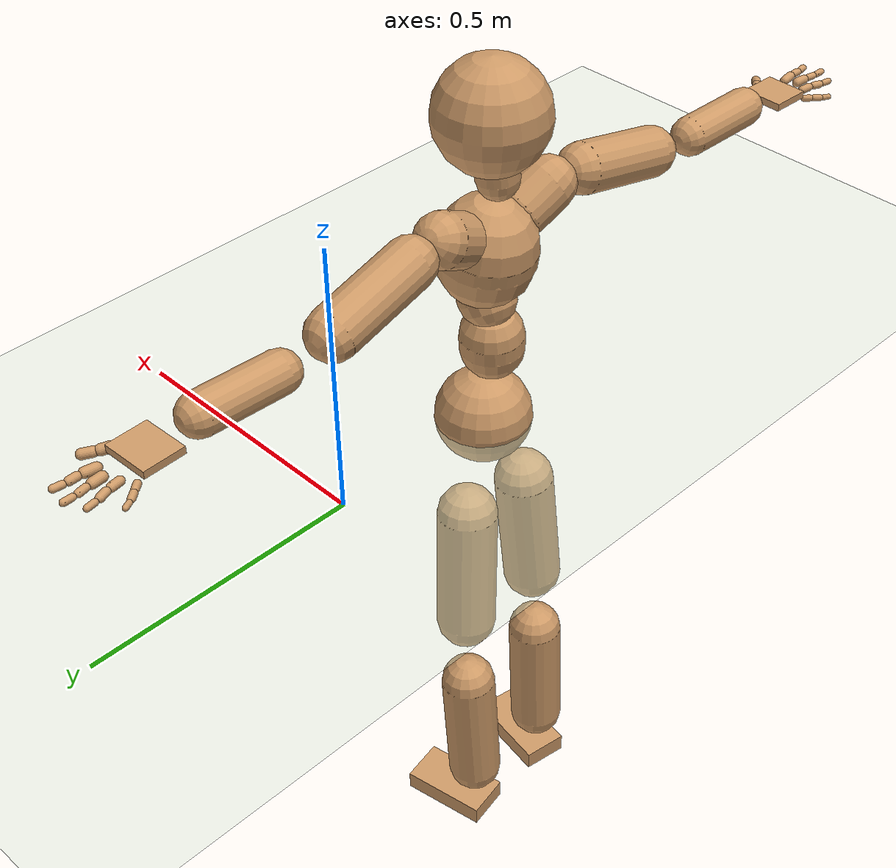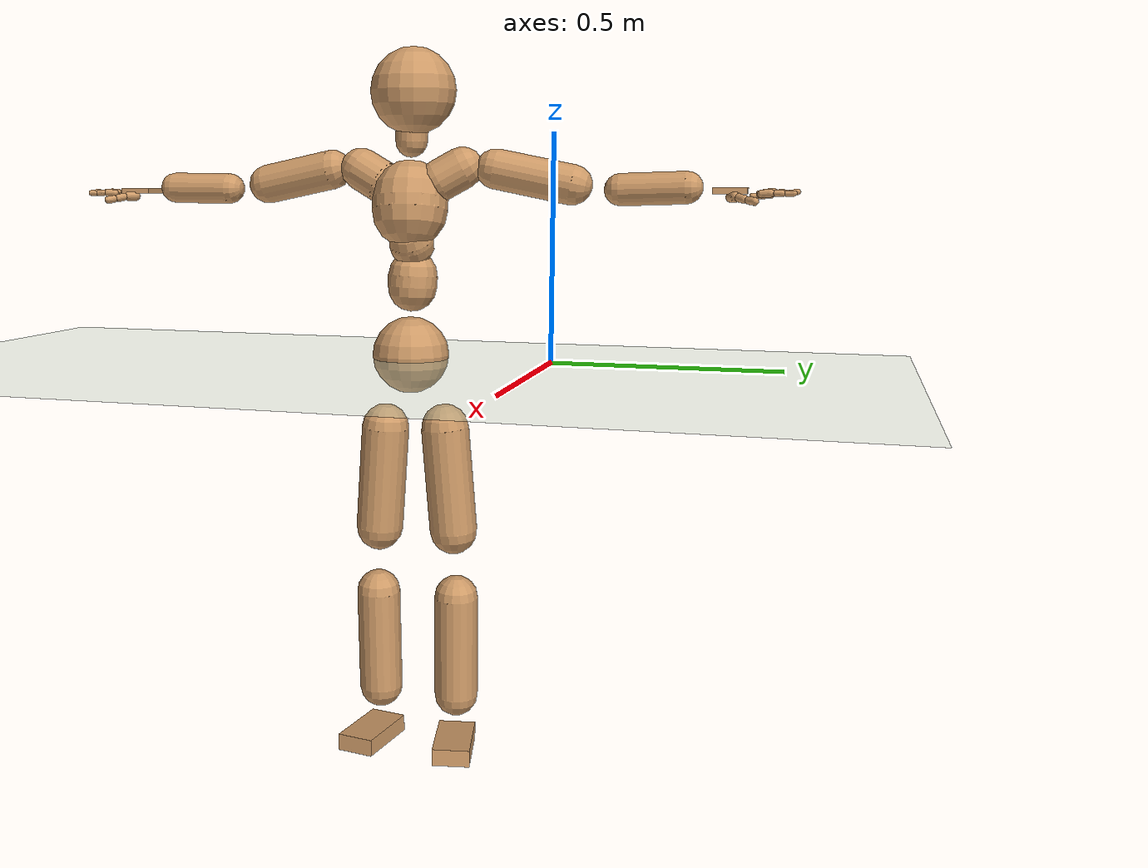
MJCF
<mujoco model="humanoid">
  <compiler coordinate="local" angle="radian"/>
  <default>
    <joint damping="0.0" armature="0.01" stiffness="0.0" limited="true"/>
    <geom conaffinity="1" condim="3" contype="7" margin="0.001" rgba="0.8 0.6 .4 1"/>
  </default>
  <asset>
    <texture type="skybox" builtin="gradient" rgb1=".4 .5 .6" rgb2="0 0 0" width="100" height="100"/>
    <texture builtin="flat" height="1278" mark="cross" markrgb="1 1 1" name="texgeom" random="0.01" rgb1="0.8 0.6 0.4" rgb2="0.8 0.6 0.4" type="cube" width="127"/>
    <texture builtin="checker" height="100" name="texplane" rgb1="0 0 0" rgb2="0.8 0.8 0.8" type="2d" width="100"/>
    <material name="MatPlane" reflectance="0.5" shininess="1" specular="1" texrepeat="60 60" texture="texplane"/>
    <material name="geom" texture="texgeom" texuniform="true"/>
  </asset>
  <worldbody>
    <light cutoff="100" diffuse="1 1 1" dir="-0 0 -1.3" directional="true" exponent="1" pos="0 0 1.3" specular=".1 .1 .1"/>
    <geom conaffinity="1" condim="3" name="floor" pos="0 0 0" rgba="0.8 0.9 0.8 1" size="100 100 .2" type="plane" material="MatPlane"/>
    <body name="Pelvis" pos="0.0006 -0.3272 0.0056">
      <freejoint name="Pelvis"/>
      <geom type="sphere" contype="1" conaffinity="1" density="500" size="0.0874" pos="0.0000 0.0000 0.0000" name="Pelvis"/>
      <body name="L_Hip" pos="-0.0272 0.0668 -0.0889">
        <joint name="L_Hip_x" type="hinge" pos="0 0 0" axis="1 0 0" stiffness="800" damping="80" armature="0.02" range="-180.0000 180.0000"/>
        <joint name="L_Hip_y" type="hinge" pos="0 0 0" axis="0 1 0" stiffness="800" damping="80" armature="0.02" range="-180.0000 180.0000"/>
        <joint name="L_Hip_z" type="hinge" pos="0 0 0" axis="0 0 1" stiffness="800" damping="80" armature="0.02" range="-180.0000 180.0000"/>
        <geom type="capsule" contype="1" conaffinity="1" density="500" fromto="-0.0043 0.0058 -0.0827 -0.0171 0.0234 -0.3307" size="0.0554" name="L_Hip"/>
        <body name="L_Knee" pos="-0.0214 0.0292 -0.4133">
          <joint name="L_Knee_x" type="hinge" pos="0 0 0" axis="1 0 0" stiffness="800" damping="80" armature="0.02" range="-180.0000 180.0000"/>
          <joint name="L_Knee_y" type="hinge" pos="0 0 0" axis="0 1 0" stiffness="800" damping="80" armature="0.02" range="-180.0000 180.0000"/>
          <joint name="L_Knee_z" type="hinge" pos="0 0 0" axis="0 0 1" stiffness="800" damping="80" armature="0.02" range="-180.0000 180.0000"/>
          <geom type="capsule" contype="1" conaffinity="1" density="500" fromto="-0.0046 -0.0011 -0.0830 -0.0182 -0.0045 -0.3319" size="0.0519" name="L_Knee"/>
          <body name="L_Ankle" pos="-0.0228 -0.0056 -0.4148">
            <joint name="L_Ankle_x" type="hinge" pos="0 0 0" axis="1 0 0" stiffness="800" damping="80" armature="0.02" range="-180.0000 180.0000"/>
            <joint name="L_Ankle_y" type="hinge" pos="0 0 0" axis="0 1 0" stiffness="800" damping="80" armature="0.02" range="-180.0000 180.0000"/>
            <joint name="L_Ankle_z" type="hinge" pos="0 0 0" axis="0 0 1" stiffness="800" damping="80" armature="0.02" range="-180.0000 180.0000"/>
            <geom type="box" contype="1" conaffinity="1" density="500" pos="0.0544 0.0103 -0.0233" size="0.0848 0.044 0.0199" quat="0.9956 0.0000 0.0000 0.0932" name="L_Ankle"/>
            <body name="L_Toe" pos="0.1089 0.0206 -0.0466">
              <joint name="L_Toe_x" type="hinge" pos="0 0 0" axis="1 0 0" stiffness="500" damping="50" armature="0.02" range="-180.0000 180.0000"/>
              <joint name="L_Toe_y" type="hinge" pos="0 0 0" axis="0 1 0" stiffness="500" damping="50" armature="0.02" range="-180.0000 180.0000"/>
              <joint name="L_Toe_z" type="hinge" pos="0 0 0" axis="0 0 1" stiffness="500" damping="50" armature="0.02" range="-180.0000 180.0000"/>
              <geom type="box" contype="1" conaffinity="1" density="500" pos="0.0000 0.0000 0.0235" size="0.0009 0.0022 0.001" quat="0.9950 0.0000 0.0000 0.1002" name="L_Toe"/>
            </body>
          </body>
        </body>
      </body>
      <body name="R_Hip" pos="-0.0286 -0.0668 -0.0959">
        <joint name="R_Hip_x" type="hinge" pos="0 0 0" axis="1 0 0" stiffness="800" damping="80" armature="0.02" range="-180.0000 180.0000"/>
        <joint name="R_Hip_y" type="hinge" pos="0 0 0" axis="0 1 0" stiffness="800" damping="80" armature="0.02" range="-180.0000 180.0000"/>
        <joint name="R_Hip_z" type="hinge" pos="0 0 0" axis="0 0 1" stiffness="800" damping="80" armature="0.02" range="-180.0000 180.0000"/>
        <geom type="capsule" contype="1" conaffinity="1" density="500" fromto="-0.0031 -0.0065 -0.0817 -0.0125 -0.0258 -0.3269" size="0.0552" name="R_Hip"/>
        <body name="R_Knee" pos="-0.0156 -0.0323 -0.4086">
          <joint name="R_Knee_x" type="hinge" pos="0 0 0" axis="1 0 0" stiffness="800" damping="80" armature="0.02" range="-180.0000 180.0000"/>
          <joint name="R_Knee_y" type="hinge" pos="0 0 0" axis="0 1 0" stiffness="800" damping="80" armature="0.02" range="-180.0000 180.0000"/>
          <joint name="R_Knee_z" type="hinge" pos="0 0 0" axis="0 0 1" stiffness="800" damping="80" armature="0.02" range="-180.0000 180.0000"/>
          <geom type="capsule" contype="1" conaffinity="1" density="500" fromto="-0.0037 0.0003 -0.0813 -0.0149 0.0011 -0.3251" size="0.0519" name="R_Knee"/>
          <body name="R_Ankle" pos="-0.0187 0.0014 -0.4064">
            <joint name="R_Ankle_x" type="hinge" pos="0 0 0" axis="1 0 0" stiffness="800" damping="80" armature="0.02" range="-180.0000 180.0000"/>
            <joint name="R_Ankle_y" type="hinge" pos="0 0 0" axis="0 1 0" stiffness="800" damping="80" armature="0.02" range="-180.0000 180.0000"/>
            <joint name="R_Ankle_z" type="hinge" pos="0 0 0" axis="0 0 1" stiffness="800" damping="80" armature="0.02" range="-180.0000 180.0000"/>
            <geom type="box" contype="1" conaffinity="1" density="500" pos="0.0512 -0.0084 -0.0252" size="0.0848 0.044 0.0199" quat="0.9967 0.0000 0.0000 -0.0808" name="R_Ankle"/>
            <body name="R_Toe" pos="0.1024 -0.0167 -0.0503">
              <joint name="R_Toe_x" type="hinge" pos="0 0 0" axis="1 0 0" stiffness="500" damping="50" armature="0.02" range="-180.0000 180.0000"/>
              <joint name="R_Toe_y" type="hinge" pos="0 0 0" axis="0 1 0" stiffness="500" damping="50" armature="0.02" range="-180.0000 180.0000"/>
              <joint name="R_Toe_z" type="hinge" pos="0 0 0" axis="0 0 1" stiffness="500" damping="50" armature="0.02" range="-180.0000 180.0000"/>
              <geom type="box" contype="1" conaffinity="1" density="500" pos="0.0000 0.0000 0.0254" size="0.0009 0.0022 0.001" quat="0.9976 0.0000 0.0000 -0.0699" name="R_Toe"/>
            </body>
          </body>
        </body>
      </body>
      <body name="Torso" pos="-0.0175 -0.0048 0.1027">
        <joint name="Torso_x" type="hinge" pos="0 0 0" axis="1 0 0" stiffness="1000" damping="100" armature="0.02" range="-180.0000 180.0000"/>
        <joint name="Torso_y" type="hinge" pos="0 0 0" axis="0 1 0" stiffness="1000" damping="100" armature="0.02" range="-180.0000 180.0000"/>
        <joint name="Torso_z" type="hinge" pos="0 0 0" axis="0 0 1" stiffness="1000" damping="100" armature="0.02" range="-180.0000 180.0000"/>
        <geom type="capsule" contype="1" conaffinity="1" density="500" fromto="-0.0013 0.0042 0.0775 -0.0009 0.0028 0.0516" size="0.0564" name="Torso"/>
        <body name="Spine" pos="-0.0022 0.0069 0.1291">
          <joint name="Spine_x" type="hinge" pos="0 0 0" axis="1 0 0" stiffness="1000" damping="100" armature="0.02" range="-180.0000 180.0000"/>
          <joint name="Spine_y" type="hinge" pos="0 0 0" axis="0 1 0" stiffness="1000" damping="100" armature="0.02" range="-180.0000 180.0000"/>
          <joint name="Spine_z" type="hinge" pos="0 0 0" axis="0 0 1" stiffness="1000" damping="100" armature="0.02" range="-180.0000 180.0000"/>
          <geom type="capsule" contype="1" conaffinity="1" density="500" fromto="0.0154 -0.0020 0.0266 0.0103 -0.0013 0.0178" size="0.0509" name="Spine"/>
          <body name="Chest" pos="0.0257 -0.0033 0.0444">
            <joint name="Chest_x" type="hinge" pos="0 0 0" axis="1 0 0" stiffness="1000" damping="100" armature="0.02" range="-180.0000 180.0000"/>
            <joint name="Chest_y" type="hinge" pos="0 0 0" axis="0 1 0" stiffness="1000" damping="100" armature="0.02" range="-180.0000 180.0000"/>
            <joint name="Chest_z" type="hinge" pos="0 0 0" axis="0 0 1" stiffness="1000" damping="100" armature="0.02" range="-180.0000 180.0000"/>
            <geom type="capsule" contype="1" conaffinity="1" density="500" fromto="-0.0126 -0.0015 0.0772 -0.0084 -0.0010 0.0514" size="0.0859" name="Chest"/>
            <body name="Neck" pos="-0.0332 -0.0054 0.1772">
              <joint name="Neck_x" type="hinge" pos="0 0 0" axis="1 0 0" stiffness="500" damping="50" armature="0.02" range="-180.0000 180.0000"/>
              <joint name="Neck_y" type="hinge" pos="0 0 0" axis="0 1 0" stiffness="500" damping="50" armature="0.02" range="-180.0000 180.0000"/>
              <joint name="Neck_z" type="hinge" pos="0 0 0" axis="0 0 1" stiffness="500" damping="50" armature="0.02" range="-180.0000 180.0000"/>
              <geom type="capsule" contype="1" conaffinity="1" density="500" fromto="0.0017 0.0017 0.0273 0.0068 0.0068 0.1090" size="0.0365" name="Neck"/>
              <body name="Head" pos="0.0085 0.0085 0.1363">
                <joint name="Head_x" type="hinge" pos="0 0 0" axis="1 0 0" stiffness="500" damping="50" armature="0.02" range="-180.0000 180.0000"/>
                <joint name="Head_y" type="hinge" pos="0 0 0" axis="0 1 0" stiffness="500" damping="50" armature="0.02" range="-180.0000 180.0000"/>
                <joint name="Head_z" type="hinge" pos="0 0 0" axis="0 0 1" stiffness="500" damping="50" armature="0.02" range="-180.0000 180.0000"/>
                <geom type="sphere" contype="1" conaffinity="1" density="500" size="0.0963" pos="0.0000 0.0000 0.0000" name="Head"/>
              </body>
            </body>
            <body name="L_Thorax" pos="-0.0126 0.0483 0.1061">
              <joint name="L_Thorax_x" type="hinge" pos="0 0 0" axis="1 0 0" stiffness="500" damping="50" armature="0.02" range="-180.0000 180.0000"/>
              <joint name="L_Thorax_y" type="hinge" pos="0 0 0" axis="0 1 0" stiffness="500" damping="50" armature="0.02" range="-180.0000 180.0000"/>
              <joint name="L_Thorax_z" type="hinge" pos="0 0 0" axis="0 0 1" stiffness="500" damping="50" armature="0.02" range="-180.0000 180.0000"/>
              <geom type="capsule" contype="1" conaffinity="1" density="500" fromto="-0.0040 0.0170 0.0096 -0.0159 0.0678 0.0383" size="0.0467" name="L_Thorax"/>
              <body name="L_Shoulder" pos="-0.0199 0.0848 0.0478">
                <joint name="L_Shoulder_x" type="hinge" pos="0 0 0" axis="1 0 0" stiffness="500" damping="50" armature="0.02" range="-180.0000 180.0000"/>
                <joint name="L_Shoulder_y" type="hinge" pos="0 0 0" axis="0 1 0" stiffness="500" damping="50" armature="0.02" range="-180.0000 180.0000"/>
                <joint name="L_Shoulder_z" type="hinge" pos="0 0 0" axis="0 0 1" stiffness="500" damping="50" armature="0.02" range="-180.0000 180.0000"/>
                <geom type="capsule" contype="1" conaffinity="1" density="500" fromto="-0.0046 0.0569 -0.0118 -0.0183 0.2277 -0.0471" size="0.0443" name="L_Shoulder"/>
                <body name="L_Elbow" pos="-0.0229 0.2846 -0.0589">
                  <joint name="L_Elbow_x" type="hinge" pos="0 0 0" axis="1 0 0" stiffness="500" damping="50" armature="0.02" range="-720.0000 720.0000"/>
                  <joint name="L_Elbow_y" type="hinge" pos="0 0 0" axis="0 1 0" stiffness="500" damping="50" armature="0.02" range="-720.0000 720.0000"/>
                  <joint name="L_Elbow_z" type="hinge" pos="0 0 0" axis="0 0 1" stiffness="500" damping="50" armature="0.02" range="-720.0000 720.0000"/>
                  <geom type="capsule" contype="1" conaffinity="1" density="500" fromto="0.0005 0.0477 0.0015 0.0019 0.1906 0.0058" size="0.0351" name="L_Elbow"/>
                  <body name="L_Wrist" pos="0.0024 0.2383 0.0073">
                    <joint name="L_Wrist_x" type="hinge" pos="0 0 0" axis="1 0 0" stiffness="300" damping="30" armature="0.02" range="-180.0000 180.0000"/>
                    <joint name="L_Wrist_y" type="hinge" pos="0 0 0" axis="0 1 0" stiffness="300" damping="30" armature="0.02" range="-180.0000 180.0000"/>
                    <joint name="L_Wrist_z" type="hinge" pos="0 0 0" axis="0 0 1" stiffness="300" damping="30" armature="0.02" range="-180.0000 180.0000"/>
                    <geom type="box" contype="1" conaffinity="1" density="500" pos="-0.0017 0.0438 -0.0083" size="0.036 0.0415 0.0065" quat="0.7203 0.0000 0.0000 -0.6936" name="L_Wrist"/>
                    <body name="L_Index1" pos="0.0199 0.1027 -0.0151">
                      <joint name="L_Index1_x" type="hinge" pos="0 0 0" axis="1 0 0" stiffness="100" damping="10" armature="0.02" range="-180.0000 180.0000"/>
                      <joint name="L_Index1_y" type="hinge" pos="0 0 0" axis="0 1 0" stiffness="100" damping="10" armature="0.02" range="-180.0000 180.0000"/>
                      <joint name="L_Index1_z" type="hinge" pos="0 0 0" axis="0 0 1" stiffness="100" damping="10" armature="0.02" range="-180.0000 180.0000"/>
                      <geom type="capsule" contype="1" conaffinity="1" density="500" fromto="0.0005 0.0062 0.0005 0.0021 0.0248 0.0020" size="0.0084" name="L_Index1"/>
                      <body name="L_Index2" pos="0.0027 0.0311 0.0024">
                        <joint name="L_Index2_x" type="hinge" pos="0 0 0" axis="1 0 0" stiffness="100" damping="10" armature="0.02" range="-180.0000 180.0000"/>
                        <joint name="L_Index2_y" type="hinge" pos="0 0 0" axis="0 1 0" stiffness="100" damping="10" armature="0.02" range="-180.0000 180.0000"/>
                        <joint name="L_Index2_z" type="hinge" pos="0 0 0" axis="0 0 1" stiffness="100" damping="10" armature="0.02" range="-180.0000 180.0000"/>
                        <geom type="capsule" contype="1" conaffinity="1" density="500" fromto="0.0001 0.0044 -0.0003 0.0004 0.0177 -0.0011" size="0.007" name="L_Index2"/>
                        <body name="L_Index3" pos="0.0005 0.0221 -0.0014">
                          <joint name="L_Index3_x" type="hinge" pos="0 0 0" axis="1 0 0" stiffness="100" damping="10" armature="0.02" range="-180.0000 180.0000"/>
                          <joint name="L_Index3_y" type="hinge" pos="0 0 0" axis="0 1 0" stiffness="100" damping="10" armature="0.02" range="-180.0000 180.0000"/>
                          <joint name="L_Index3_z" type="hinge" pos="0 0 0" axis="0 0 1" stiffness="100" damping="10" armature="0.02" range="-180.0000 180.0000"/>
                          <geom type="capsule" contype="1" conaffinity="1" density="500" fromto="0.0005 0.0048 0.0001 0.0020 0.0193 0.0005" size="0.006" name="L_Index3"/>
                        </body>
                      </body>
                    </body>
                    <body name="L_Middle1" pos="-0.0014 0.1094 -0.0128">
                      <joint name="L_Middle1_x" type="hinge" pos="0 0 0" axis="1 0 0" stiffness="100" damping="10" armature="0.02" range="-180.0000 180.0000"/>
                      <joint name="L_Middle1_y" type="hinge" pos="0 0 0" axis="0 1 0" stiffness="100" damping="10" armature="0.02" range="-180.0000 180.0000"/>
                      <joint name="L_Middle1_z" type="hinge" pos="0 0 0" axis="0 0 1" stiffness="100" damping="10" armature="0.02" range="-180.0000 180.0000"/>
                      <geom type="capsule" contype="1" conaffinity="1" density="500" fromto="-0.0008 0.0059 0.0002 -0.0031 0.0236 0.0010" size="0.0084" name="L_Middle1"/>
                      <body name="L_Middle2" pos="-0.0038 0.0295 0.0012">
                        <joint name="L_Middle2_x" type="hinge" pos="0 0 0" axis="1 0 0" stiffness="100" damping="10" armature="0.02" range="-180.0000 180.0000"/>
                        <joint name="L_Middle2_y" type="hinge" pos="0 0 0" axis="0 1 0" stiffness="100" damping="10" armature="0.02" range="-180.0000 180.0000"/>
                        <joint name="L_Middle2_z" type="hinge" pos="0 0 0" axis="0 0 1" stiffness="100" damping="10" armature="0.02" range="-180.0000 180.0000"/>
                        <geom type="capsule" contype="1" conaffinity="1" density="500" fromto="-0.0007 0.0046 -0.0001 -0.0029 0.0184 -0.0004" size="0.0063" name="L_Middle2"/>
                        <body name="L_Middle3" pos="-0.0037 0.023 -0.0005">
                          <joint name="L_Middle3_x" type="hinge" pos="0 0 0" axis="1 0 0" stiffness="100" damping="10" armature="0.02" range="-180.0000 180.0000"/>
                          <joint name="L_Middle3_y" type="hinge" pos="0 0 0" axis="0 1 0" stiffness="100" damping="10" armature="0.02" range="-180.0000 180.0000"/>
                          <joint name="L_Middle3_z" type="hinge" pos="0 0 0" axis="0 0 1" stiffness="100" damping="10" armature="0.02" range="-180.0000 180.0000"/>
                          <geom type="capsule" contype="1" conaffinity="1" density="500" fromto="-0.0003 0.0050 0.0003 -0.0013 0.0200 0.0012" size="0.0057" name="L_Middle3"/>
                        </body>
                      </body>
                    </body>
                    <body name="L_Pinky1" pos="-0.0376 0.0845 -0.0194">
                      <joint name="L_Pinky1_x" type="hinge" pos="0 0 0" axis="1 0 0" stiffness="100" damping="10" armature="0.02" range="-180.0000 180.0000"/>
                      <joint name="L_Pinky1_y" type="hinge" pos="0 0 0" axis="0 1 0" stiffness="100" damping="10" armature="0.02" range="-180.0000 180.0000"/>
                      <joint name="L_Pinky1_z" type="hinge" pos="0 0 0" axis="0 0 1" stiffness="100" damping="10" armature="0.02" range="-180.0000 180.0000"/>
                      <geom type="capsule" contype="1" conaffinity="1" density="500" fromto="-0.0023 0.0028 -0.0000 -0.0093 0.0113 -0.0002" size="0.0061" name="L_Pinky1"/>
                      <body name="L_Pinky2" pos="-0.0117 0.0141 -0.0002">
                        <joint name="L_Pinky2_x" type="hinge" pos="0 0 0" axis="1 0 0" stiffness="100" damping="10" armature="0.02" range="-180.0000 180.0000"/>
                        <joint name="L_Pinky2_y" type="hinge" pos="0 0 0" axis="0 1 0" stiffness="100" damping="10" armature="0.02" range="-180.0000 180.0000"/>
                        <joint name="L_Pinky2_z" type="hinge" pos="0 0 0" axis="0 0 1" stiffness="100" damping="10" armature="0.02" range="-180.0000 180.0000"/>
                        <geom type="capsule" contype="1" conaffinity="1" density="500" fromto="-0.0023 0.0029 -0.0001 -0.0091 0.0116 -0.0005" size="0.006" name="L_Pinky2"/>
                        <body name="L_Pinky3" pos="-0.0114 0.0145 -0.0007">
                          <joint name="L_Pinky3_x" type="hinge" pos="0 0 0" axis="1 0 0" stiffness="100" damping="10" armature="0.02" range="-180.0000 180.0000"/>
                          <joint name="L_Pinky3_y" type="hinge" pos="0 0 0" axis="0 1 0" stiffness="100" damping="10" armature="0.02" range="-180.0000 180.0000"/>
                          <joint name="L_Pinky3_z" type="hinge" pos="0 0 0" axis="0 0 1" stiffness="100" damping="10" armature="0.02" range="-180.0000 180.0000"/>
                          <geom type="capsule" contype="1" conaffinity="1" density="500" fromto="-0.0019 0.0033 0.0003 -0.0075 0.0132 0.0011" size="0.0047" name="L_Pinky3"/>
                        </body>
                      </body>
                    </body>
                    <body name="L_Ring1" pos="-0.0227 0.0974 -0.0149">
                      <joint name="L_Ring1_x" type="hinge" pos="0 0 0" axis="1 0 0" stiffness="100" damping="10" armature="0.02" range="-180.0000 180.0000"/>
                      <joint name="L_Ring1_y" type="hinge" pos="0 0 0" axis="0 1 0" stiffness="100" damping="10" armature="0.02" range="-180.0000 180.0000"/>
                      <joint name="L_Ring1_z" type="hinge" pos="0 0 0" axis="0 0 1" stiffness="100" damping="10" armature="0.02" range="-180.0000 180.0000"/>
                      <geom type="capsule" contype="1" conaffinity="1" density="500" fromto="-0.0011 0.0053 0.0003 -0.0043 0.0213 0.0012" size="0.0073" name="L_Ring1"/>
                      <body name="L_Ring2" pos="-0.0053 0.0266 0.0015">
                        <joint name="L_Ring2_x" type="hinge" pos="0 0 0" axis="1 0 0" stiffness="100" damping="10" armature="0.02" range="-180.0000 180.0000"/>
                        <joint name="L_Ring2_y" type="hinge" pos="0 0 0" axis="0 1 0" stiffness="100" damping="10" armature="0.02" range="-180.0000 180.0000"/>
                        <joint name="L_Ring2_z" type="hinge" pos="0 0 0" axis="0 0 1" stiffness="100" damping="10" armature="0.02" range="-180.0000 180.0000"/>
                        <geom type="capsule" contype="1" conaffinity="1" density="500" fromto="-0.0014 0.0044 -0.0002 -0.0056 0.0176 -0.0007" size="0.0068" name="L_Ring2"/>
                        <body name="L_Ring3" pos="-0.007 0.022 -0.0008">
                          <joint name="L_Ring3_x" type="hinge" pos="0 0 0" axis="1 0 0" stiffness="100" damping="10" armature="0.02" range="-180.0000 180.0000"/>
                          <joint name="L_Ring3_y" type="hinge" pos="0 0 0" axis="0 1 0" stiffness="100" damping="10" armature="0.02" range="-180.0000 180.0000"/>
                          <joint name="L_Ring3_z" type="hinge" pos="0 0 0" axis="0 0 1" stiffness="100" damping="10" armature="0.02" range="-180.0000 180.0000"/>
                          <geom type="capsule" contype="1" conaffinity="1" density="500" fromto="-0.0010 0.0048 0.0002 -0.0040 0.0192 0.0009" size="0.0054" name="L_Ring3"/>
                        </body>
                      </body>
                    </body>
                    <body name="L_Thumb1" pos="0.0252 0.0441 -0.0212">
                      <joint name="L_Thumb1_x" type="hinge" pos="0 0 0" axis="1 0 0" stiffness="100" damping="10" armature="0.02" range="-180.0000 180.0000"/>
                      <joint name="L_Thumb1_y" type="hinge" pos="0 0 0" axis="0 1 0" stiffness="100" damping="10" armature="0.02" range="-180.0000 180.0000"/>
                      <joint name="L_Thumb1_z" type="hinge" pos="0 0 0" axis="0 0 1" stiffness="100" damping="10" armature="0.02" range="-180.0000 180.0000"/>
                      <geom type="capsule" contype="1" conaffinity="1" density="500" fromto="0.0046 0.0035 -0.0000 0.0182 0.0138 -0.0001" size="0.011" name="L_Thumb1"/>
                      <body name="L_Thumb2" pos="0.0228 0.0173 -0.0001">
                        <joint name="L_Thumb2_x" type="hinge" pos="0 0 0" axis="1 0 0" stiffness="100" damping="10" armature="0.02" range="-180.0000 180.0000"/>
                        <joint name="L_Thumb2_y" type="hinge" pos="0 0 0" axis="0 1 0" stiffness="100" damping="10" armature="0.02" range="-180.0000 180.0000"/>
                        <joint name="L_Thumb2_z" type="hinge" pos="0 0 0" axis="0 0 1" stiffness="100" damping="10" armature="0.02" range="-180.0000 180.0000"/>
                        <geom type="capsule" contype="1" conaffinity="1" density="500" fromto="0.0028 0.0040 -0.0011 0.0113 0.0161 -0.0046" size="0.0088" name="L_Thumb2"/>
                        <body name="L_Thumb3" pos="0.0141 0.0201 -0.0057">
                          <joint name="L_Thumb3_x" type="hinge" pos="0 0 0" axis="1 0 0" stiffness="100" damping="10" armature="0.02" range="-180.0000 180.0000"/>
                          <joint name="L_Thumb3_y" type="hinge" pos="0 0 0" axis="0 1 0" stiffness="100" damping="10" armature="0.02" range="-180.0000 180.0000"/>
                          <joint name="L_Thumb3_z" type="hinge" pos="0 0 0" axis="0 0 1" stiffness="100" damping="10" armature="0.02" range="-180.0000 180.0000"/>
                          <geom type="capsule" contype="1" conaffinity="1" density="500" fromto="0.0032 0.0044 -0.0007 0.0129 0.0177 -0.0030" size="0.0083" name="L_Thumb3"/>
                        </body>
                      </body>
                    </body>
                  </body>
                </body>
              </body>
            </body>
            <body name="R_Thorax" pos="-0.0175 -0.0503 0.1025">
              <joint name="R_Thorax_x" type="hinge" pos="0 0 0" axis="1 0 0" stiffness="500" damping="50" armature="0.02" range="-180.0000 180.0000"/>
              <joint name="R_Thorax_y" type="hinge" pos="0 0 0" axis="0 1 0" stiffness="500" damping="50" armature="0.02" range="-180.0000 180.0000"/>
              <joint name="R_Thorax_z" type="hinge" pos="0 0 0" axis="0 0 1" stiffness="500" damping="50" armature="0.02" range="-180.0000 180.0000"/>
              <geom type="capsule" contype="1" conaffinity="1" density="500" fromto="-0.0029 -0.0183 0.0101 -0.0118 -0.0732 0.0403" size="0.0477" name="R_Thorax"/>
              <body name="R_Shoulder" pos="-0.0147 -0.0915 0.0504">
                <joint name="R_Shoulder_x" type="hinge" pos="0 0 0" axis="1 0 0" stiffness="500" damping="50" armature="0.02" range="-180.0000 180.0000"/>
                <joint name="R_Shoulder_y" type="hinge" pos="0 0 0" axis="0 1 0" stiffness="500" damping="50" armature="0.02" range="-180.0000 180.0000"/>
                <joint name="R_Shoulder_z" type="hinge" pos="0 0 0" axis="0 0 1" stiffness="500" damping="50" armature="0.02" range="-180.0000 180.0000"/>
                <geom type="capsule" contype="1" conaffinity="1" density="500" fromto="-0.0032 -0.0549 -0.0108 -0.0129 -0.2197 -0.0434" size="0.0446" name="R_Shoulder"/>
                <body name="R_Elbow" pos="-0.0161 -0.2747 -0.0542">
                  <joint name="R_Elbow_x" type="hinge" pos="0 0 0" axis="1 0 0" stiffness="500" damping="50" armature="0.02" range="-720.0000 720.0000"/>
                  <joint name="R_Elbow_y" type="hinge" pos="0 0 0" axis="0 1 0" stiffness="500" damping="50" armature="0.02" range="-720.0000 720.0000"/>
                  <joint name="R_Elbow_z" type="hinge" pos="0 0 0" axis="0 0 1" stiffness="500" damping="50" armature="0.02" range="-720.0000 720.0000"/>
                  <geom type="capsule" contype="1" conaffinity="1" density="500" fromto="-0.0012 -0.0479 0.0006 -0.0048 -0.1916 0.0024" size="0.0353" name="R_Elbow"/>
                  <body name="R_Wrist" pos="-0.006 -0.2395 0.003">
                    <joint name="R_Wrist_x" type="hinge" pos="0 0 0" axis="1 0 0" stiffness="300" damping="30" armature="0.02" range="-180.0000 180.0000"/>
                    <joint name="R_Wrist_y" type="hinge" pos="0 0 0" axis="0 1 0" stiffness="300" damping="30" armature="0.02" range="-180.0000 180.0000"/>
                    <joint name="R_Wrist_z" type="hinge" pos="0 0 0" axis="0 0 1" stiffness="300" damping="30" armature="0.02" range="-180.0000 180.0000"/>
                    <geom type="box" contype="1" conaffinity="1" density="500" pos="-0.0010 -0.0432 -0.0080" size="0.036 0.0388 0.0067" quat="0.7154 0.0000 0.0000 0.6987" name="R_Wrist"/>
                    <body name="R_Index1" pos="0.0212 -0.1014 -0.0145">
                      <joint name="R_Index1_x" type="hinge" pos="0 0 0" axis="1 0 0" stiffness="100" damping="10" armature="0.02" range="-180.0000 180.0000"/>
                      <joint name="R_Index1_y" type="hinge" pos="0 0 0" axis="0 1 0" stiffness="100" damping="10" armature="0.02" range="-180.0000 180.0000"/>
                      <joint name="R_Index1_z" type="hinge" pos="0 0 0" axis="0 0 1" stiffness="100" damping="10" armature="0.02" range="-180.0000 180.0000"/>
                      <geom type="capsule" contype="1" conaffinity="1" density="500" fromto="0.0005 -0.0062 0.0005 0.0021 -0.0248 0.0019" size="0.0084" name="R_Index1"/>
                      <body name="R_Index2" pos="0.0027 -0.0311 0.0024">
                        <joint name="R_Index2_x" type="hinge" pos="0 0 0" axis="1 0 0" stiffness="100" damping="10" armature="0.02" range="-180.0000 180.0000"/>
                        <joint name="R_Index2_y" type="hinge" pos="0 0 0" axis="0 1 0" stiffness="100" damping="10" armature="0.02" range="-180.0000 180.0000"/>
                        <joint name="R_Index2_z" type="hinge" pos="0 0 0" axis="0 0 1" stiffness="100" damping="10" armature="0.02" range="-180.0000 180.0000"/>
                        <geom type="capsule" contype="1" conaffinity="1" density="500" fromto="0.0001 -0.0044 -0.0003 0.0004 -0.0177 -0.0011" size="0.007" name="R_Index2"/>
                        <body name="R_Index3" pos="0.0005 -0.0221 -0.0014">
                          <joint name="R_Index3_x" type="hinge" pos="0 0 0" axis="1 0 0" stiffness="100" damping="10" armature="0.02" range="-180.0000 180.0000"/>
                          <joint name="R_Index3_y" type="hinge" pos="0 0 0" axis="0 1 0" stiffness="100" damping="10" armature="0.02" range="-180.0000 180.0000"/>
                          <joint name="R_Index3_z" type="hinge" pos="0 0 0" axis="0 0 1" stiffness="100" damping="10" armature="0.02" range="-180.0000 180.0000"/>
                          <geom type="capsule" contype="1" conaffinity="1" density="500" fromto="0.0005 -0.0040 0.0001 0.0020 -0.0161 0.0005" size="0.0063" name="R_Index3"/>
                        </body>
                      </body>
                    </body>
                    <body name="R_Middle1" pos="-0.0001 -0.1081 -0.0122">
                      <joint name="R_Middle1_x" type="hinge" pos="0 0 0" axis="1 0 0" stiffness="100" damping="10" armature="0.02" range="-180.0000 180.0000"/>
                      <joint name="R_Middle1_y" type="hinge" pos="0 0 0" axis="0 1 0" stiffness="100" damping="10" armature="0.02" range="-180.0000 180.0000"/>
                      <joint name="R_Middle1_z" type="hinge" pos="0 0 0" axis="0 0 1" stiffness="100" damping="10" armature="0.02" range="-180.0000 180.0000"/>
                      <geom type="capsule" contype="1" conaffinity="1" density="500" fromto="-0.0008 -0.0059 0.0002 -0.0031 -0.0236 0.0010" size="0.0084" name="R_Middle1"/>
                      <body name="R_Middle2" pos="-0.0038 -0.0295 0.0012">
                        <joint name="R_Middle2_x" type="hinge" pos="0 0 0" axis="1 0 0" stiffness="100" damping="10" armature="0.02" range="-180.0000 180.0000"/>
                        <joint name="R_Middle2_y" type="hinge" pos="0 0 0" axis="0 1 0" stiffness="100" damping="10" armature="0.02" range="-180.0000 180.0000"/>
                        <joint name="R_Middle2_z" type="hinge" pos="0 0 0" axis="0 0 1" stiffness="100" damping="10" armature="0.02" range="-180.0000 180.0000"/>
                        <geom type="capsule" contype="1" conaffinity="1" density="500" fromto="-0.0007 -0.0046 -0.0001 -0.0029 -0.0184 -0.0004" size="0.0063" name="R_Middle2"/>
                        <body name="R_Middle3" pos="-0.0037 -0.023 -0.0005">
                          <joint name="R_Middle3_x" type="hinge" pos="0 0 0" axis="1 0 0" stiffness="100" damping="10" armature="0.02" range="-180.0000 180.0000"/>
                          <joint name="R_Middle3_y" type="hinge" pos="0 0 0" axis="0 1 0" stiffness="100" damping="10" armature="0.02" range="-180.0000 180.0000"/>
                          <joint name="R_Middle3_z" type="hinge" pos="0 0 0" axis="0 0 1" stiffness="100" damping="10" armature="0.02" range="-180.0000 180.0000"/>
                          <geom type="capsule" contype="1" conaffinity="1" density="500" fromto="-0.0003 -0.0042 0.0003 -0.0013 -0.0168 0.0012" size="0.006" name="R_Middle3"/>
                        </body>
                      </body>
                    </body>
                    <body name="R_Pinky1" pos="-0.0364 -0.0832 -0.0188">
                      <joint name="R_Pinky1_x" type="hinge" pos="0 0 0" axis="1 0 0" stiffness="100" damping="10" armature="0.02" range="-180.0000 180.0000"/>
                      <joint name="R_Pinky1_y" type="hinge" pos="0 0 0" axis="0 1 0" stiffness="100" damping="10" armature="0.02" range="-180.0000 180.0000"/>
                      <joint name="R_Pinky1_z" type="hinge" pos="0 0 0" axis="0 0 1" stiffness="100" damping="10" armature="0.02" range="-180.0000 180.0000"/>
                      <geom type="capsule" contype="1" conaffinity="1" density="500" fromto="-0.0023 -0.0028 -0.0000 -0.0093 -0.0113 -0.0002" size="0.0061" name="R_Pinky1"/>
                      <body name="R_Pinky2" pos="-0.0117 -0.0141 -0.0002">
                        <joint name="R_Pinky2_x" type="hinge" pos="0 0 0" axis="1 0 0" stiffness="100" damping="10" armature="0.02" range="-180.0000 180.0000"/>
                        <joint name="R_Pinky2_y" type="hinge" pos="0 0 0" axis="0 1 0" stiffness="100" damping="10" armature="0.02" range="-180.0000 180.0000"/>
                        <joint name="R_Pinky2_z" type="hinge" pos="0 0 0" axis="0 0 1" stiffness="100" damping="10" armature="0.02" range="-180.0000 180.0000"/>
                        <geom type="capsule" contype="1" conaffinity="1" density="500" fromto="-0.0023 -0.0029 -0.0001 -0.0091 -0.0116 -0.0005" size="0.006" name="R_Pinky2"/>
                        <body name="R_Pinky3" pos="-0.0114 -0.0145 -0.0007">
                          <joint name="R_Pinky3_x" type="hinge" pos="0 0 0" axis="1 0 0" stiffness="100" damping="10" armature="0.02" range="-180.0000 180.0000"/>
                          <joint name="R_Pinky3_y" type="hinge" pos="0 0 0" axis="0 1 0" stiffness="100" damping="10" armature="0.02" range="-180.0000 180.0000"/>
                          <joint name="R_Pinky3_z" type="hinge" pos="0 0 0" axis="0 0 1" stiffness="100" damping="10" armature="0.02" range="-180.0000 180.0000"/>
                          <geom type="capsule" contype="1" conaffinity="1" density="500" fromto="-0.0019 -0.0025 0.0003 -0.0075 -0.0100 0.0011" size="0.005" name="R_Pinky3"/>
                        </body>
                      </body>
                    </body>
                    <body name="R_Ring1" pos="-0.0214 -0.0962 -0.0144">
                      <joint name="R_Ring1_x" type="hinge" pos="0 0 0" axis="1 0 0" stiffness="100" damping="10" armature="0.02" range="-180.0000 180.0000"/>
                      <joint name="R_Ring1_y" type="hinge" pos="0 0 0" axis="0 1 0" stiffness="100" damping="10" armature="0.02" range="-180.0000 180.0000"/>
                      <joint name="R_Ring1_z" type="hinge" pos="0 0 0" axis="0 0 1" stiffness="100" damping="10" armature="0.02" range="-180.0000 180.0000"/>
                      <geom type="capsule" contype="1" conaffinity="1" density="500" fromto="-0.0011 -0.0053 0.0003 -0.0043 -0.0213 0.0012" size="0.0073" name="R_Ring1"/>
                      <body name="R_Ring2" pos="-0.0053 -0.0266 0.0015">
                        <joint name="R_Ring2_x" type="hinge" pos="0 0 0" axis="1 0 0" stiffness="100" damping="10" armature="0.02" range="-180.0000 180.0000"/>
                        <joint name="R_Ring2_y" type="hinge" pos="0 0 0" axis="0 1 0" stiffness="100" damping="10" armature="0.02" range="-180.0000 180.0000"/>
                        <joint name="R_Ring2_z" type="hinge" pos="0 0 0" axis="0 0 1" stiffness="100" damping="10" armature="0.02" range="-180.0000 180.0000"/>
                        <geom type="capsule" contype="1" conaffinity="1" density="500" fromto="-0.0014 -0.0044 -0.0002 -0.0056 -0.0176 -0.0007" size="0.0068" name="R_Ring2"/>
                        <body name="R_Ring3" pos="-0.007 -0.022 -0.0008">
                          <joint name="R_Ring3_x" type="hinge" pos="0 0 0" axis="1 0 0" stiffness="100" damping="10" armature="0.02" range="-180.0000 180.0000"/>
                          <joint name="R_Ring3_y" type="hinge" pos="0 0 0" axis="0 1 0" stiffness="100" damping="10" armature="0.02" range="-180.0000 180.0000"/>
                          <joint name="R_Ring3_z" type="hinge" pos="0 0 0" axis="0 0 1" stiffness="100" damping="10" armature="0.02" range="-180.0000 180.0000"/>
                          <geom type="capsule" contype="1" conaffinity="1" density="500" fromto="-0.0010 -0.0040 0.0002 -0.0040 -0.0160 0.0009" size="0.0057" name="R_Ring3"/>
                        </body>
                      </body>
                    </body>
                    <body name="R_Thumb1" pos="0.0265 -0.0428 -0.0206">
                      <joint name="R_Thumb1_x" type="hinge" pos="0 0 0" axis="1 0 0" stiffness="100" damping="10" armature="0.02" range="-180.0000 180.0000"/>
                      <joint name="R_Thumb1_y" type="hinge" pos="0 0 0" axis="0 1 0" stiffness="100" damping="10" armature="0.02" range="-180.0000 180.0000"/>
                      <joint name="R_Thumb1_z" type="hinge" pos="0 0 0" axis="0 0 1" stiffness="100" damping="10" armature="0.02" range="-180.0000 180.0000"/>
                      <geom type="capsule" contype="1" conaffinity="1" density="500" fromto="0.0046 -0.0035 -0.0000 0.0182 -0.0138 -0.0001" size="0.011" name="R_Thumb1"/>
                      <body name="R_Thumb2" pos="0.0228 -0.0173 -0.0001">
                        <joint name="R_Thumb2_x" type="hinge" pos="0 0 0" axis="1 0 0" stiffness="100" damping="10" armature="0.02" range="-180.0000 180.0000"/>
                        <joint name="R_Thumb2_y" type="hinge" pos="0 0 0" axis="0 1 0" stiffness="100" damping="10" armature="0.02" range="-180.0000 180.0000"/>
                        <joint name="R_Thumb2_z" type="hinge" pos="0 0 0" axis="0 0 1" stiffness="100" damping="10" armature="0.02" range="-180.0000 180.0000"/>
                        <geom type="capsule" contype="1" conaffinity="1" density="500" fromto="0.0028 -0.0040 -0.0011 0.0113 -0.0161 -0.0046" size="0.0088" name="R_Thumb2"/>
                        <body name="R_Thumb3" pos="0.0141 -0.0201 -0.0057">
                          <joint name="R_Thumb3_x" type="hinge" pos="0 0 0" axis="1 0 0" stiffness="100" damping="10" armature="0.02" range="-180.0000 180.0000"/>
                          <joint name="R_Thumb3_y" type="hinge" pos="0 0 0" axis="0 1 0" stiffness="100" damping="10" armature="0.02" range="-180.0000 180.0000"/>
                          <joint name="R_Thumb3_z" type="hinge" pos="0 0 0" axis="0 0 1" stiffness="100" damping="10" armature="0.02" range="-180.0000 180.0000"/>
                          <geom type="capsule" contype="1" conaffinity="1" density="500" fromto="0.0032 -0.0036 -0.0007 0.0129 -0.0145 -0.0030" size="0.0085" name="R_Thumb3"/>
                        </body>
                      </body>
                    </body>
                  </body>
                </body>
              </body>
            </body>
          </body>
        </body>
      </body>
    </body>
  </worldbody>
  <actuator>
    <motor name="L_Hip_x" joint="L_Hip_x" gear="500"/>
    <motor name="L_Hip_y" joint="L_Hip_y" gear="500"/>
    <motor name="L_Hip_z" joint="L_Hip_z" gear="500"/>
    <motor name="L_Knee_x" joint="L_Knee_x" gear="500"/>
    <motor name="L_Knee_y" joint="L_Knee_y" gear="500"/>
    <motor name="L_Knee_z" joint="L_Knee_z" gear="500"/>
    <motor name="L_Ankle_x" joint="L_Ankle_x" gear="500"/>
    <motor name="L_Ankle_y" joint="L_Ankle_y" gear="500"/>
    <motor name="L_Ankle_z" joint="L_Ankle_z" gear="500"/>
    <motor name="L_Toe_x" joint="L_Toe_x" gear="500"/>
    <motor name="L_Toe_y" joint="L_Toe_y" gear="500"/>
    <motor name="L_Toe_z" joint="L_Toe_z" gear="500"/>
    <motor name="R_Hip_x" joint="R_Hip_x" gear="500"/>
    <motor name="R_Hip_y" joint="R_Hip_y" gear="500"/>
    <motor name="R_Hip_z" joint="R_Hip_z" gear="500"/>
    <motor name="R_Knee_x" joint="R_Knee_x" gear="500"/>
    <motor name="R_Knee_y" joint="R_Knee_y" gear="500"/>
    <motor name="R_Knee_z" joint="R_Knee_z" gear="500"/>
    <motor name="R_Ankle_x" joint="R_Ankle_x" gear="500"/>
    <motor name="R_Ankle_y" joint="R_Ankle_y" gear="500"/>
    <motor name="R_Ankle_z" joint="R_Ankle_z" gear="500"/>
    <motor name="R_Toe_x" joint="R_Toe_x" gear="500"/>
    <motor name="R_Toe_y" joint="R_Toe_y" gear="500"/>
    <motor name="R_Toe_z" joint="R_Toe_z" gear="500"/>
    <motor name="Torso_x" joint="Torso_x" gear="500"/>
    <motor name="Torso_y" joint="Torso_y" gear="500"/>
    <motor name="Torso_z" joint="Torso_z" gear="500"/>
    <motor name="Spine_x" joint="Spine_x" gear="500"/>
    <motor name="Spine_y" joint="Spine_y" gear="500"/>
    <motor name="Spine_z" joint="Spine_z" gear="500"/>
    <motor name="Chest_x" joint="Chest_x" gear="500"/>
    <motor name="Chest_y" joint="Chest_y" gear="500"/>
    <motor name="Chest_z" joint="Chest_z" gear="500"/>
    <motor name="Neck_x" joint="Neck_x" gear="500"/>
    <motor name="Neck_y" joint="Neck_y" gear="500"/>
    <motor name="Neck_z" joint="Neck_z" gear="500"/>
    <motor name="Head_x" joint="Head_x" gear="500"/>
    <motor name="Head_y" joint="Head_y" gear="500"/>
    <motor name="Head_z" joint="Head_z" gear="500"/>
    <motor name="L_Thorax_x" joint="L_Thorax_x" gear="500"/>
    <motor name="L_Thorax_y" joint="L_Thorax_y" gear="500"/>
    <motor name="L_Thorax_z" joint="L_Thorax_z" gear="500"/>
    <motor name="L_Shoulder_x" joint="L_Shoulder_x" gear="500"/>
    <motor name="L_Shoulder_y" joint="L_Shoulder_y" gear="500"/>
    <motor name="L_Shoulder_z" joint="L_Shoulder_z" gear="500"/>
    <motor name="L_Elbow_x" joint="L_Elbow_x" gear="500"/>
    <motor name="L_Elbow_y" joint="L_Elbow_y" gear="500"/>
    <motor name="L_Elbow_z" joint="L_Elbow_z" gear="500"/>
    <motor name="L_Wrist_x" joint="L_Wrist_x" gear="500"/>
    <motor name="L_Wrist_y" joint="L_Wrist_y" gear="500"/>
    <motor name="L_Wrist_z" joint="L_Wrist_z" gear="500"/>
    <motor name="L_Index1_x" joint="L_Index1_x" gear="500"/>
    <motor name="L_Index1_y" joint="L_Index1_y" gear="500"/>
    <motor name="L_Index1_z" joint="L_Index1_z" gear="500"/>
    <motor name="L_Index2_x" joint="L_Index2_x" gear="500"/>
    <motor name="L_Index2_y" joint="L_Index2_y" gear="500"/>
    <motor name="L_Index2_z" joint="L_Index2_z" gear="500"/>
    <motor name="L_Index3_x" joint="L_Index3_x" gear="500"/>
    <motor name="L_Index3_y" joint="L_Index3_y" gear="500"/>
    <motor name="L_Index3_z" joint="L_Index3_z" gear="500"/>
    <motor name="L_Middle1_x" joint="L_Middle1_x" gear="500"/>
    <motor name="L_Middle1_y" joint="L_Middle1_y" gear="500"/>
    <motor name="L_Middle1_z" joint="L_Middle1_z" gear="500"/>
    <motor name="L_Middle2_x" joint="L_Middle2_x" gear="500"/>
    <motor name="L_Middle2_y" joint="L_Middle2_y" gear="500"/>
    <motor name="L_Middle2_z" joint="L_Middle2_z" gear="500"/>
    <motor name="L_Middle3_x" joint="L_Middle3_x" gear="500"/>
    <motor name="L_Middle3_y" joint="L_Middle3_y" gear="500"/>
    <motor name="L_Middle3_z" joint="L_Middle3_z" gear="500"/>
    <motor name="L_Pinky1_x" joint="L_Pinky1_x" gear="500"/>
    <motor name="L_Pinky1_y" joint="L_Pinky1_y" gear="500"/>
    <motor name="L_Pinky1_z" joint="L_Pinky1_z" gear="500"/>
    <motor name="L_Pinky2_x" joint="L_Pinky2_x" gear="500"/>
    <motor name="L_Pinky2_y" joint="L_Pinky2_y" gear="500"/>
    <motor name="L_Pinky2_z" joint="L_Pinky2_z" gear="500"/>
    <motor name="L_Pinky3_x" joint="L_Pinky3_x" gear="500"/>
    <motor name="L_Pinky3_y" joint="L_Pinky3_y" gear="500"/>
    <motor name="L_Pinky3_z" joint="L_Pinky3_z" gear="500"/>
    <motor name="L_Ring1_x" joint="L_Ring1_x" gear="500"/>
    <motor name="L_Ring1_y" joint="L_Ring1_y" gear="500"/>
    <motor name="L_Ring1_z" joint="L_Ring1_z" gear="500"/>
    <motor name="L_Ring2_x" joint="L_Ring2_x" gear="500"/>
    <motor name="L_Ring2_y" joint="L_Ring2_y" gear="500"/>
    <motor name="L_Ring2_z" joint="L_Ring2_z" gear="500"/>
    <motor name="L_Ring3_x" joint="L_Ring3_x" gear="500"/>
    <motor name="L_Ring3_y" joint="L_Ring3_y" gear="500"/>
    <motor name="L_Ring3_z" joint="L_Ring3_z" gear="500"/>
    <motor name="L_Thumb1_x" joint="L_Thumb1_x" gear="500"/>
    <motor name="L_Thumb1_y" joint="L_Thumb1_y" gear="500"/>
    <motor name="L_Thumb1_z" joint="L_Thumb1_z" gear="500"/>
    <motor name="L_Thumb2_x" joint="L_Thumb2_x" gear="500"/>
    <motor name="L_Thumb2_y" joint="L_Thumb2_y" gear="500"/>
    <motor name="L_Thumb2_z" joint="L_Thumb2_z" gear="500"/>
    <motor name="L_Thumb3_x" joint="L_Thumb3_x" gear="500"/>
    <motor name="L_Thumb3_y" joint="L_Thumb3_y" gear="500"/>
    <motor name="L_Thumb3_z" joint="L_Thumb3_z" gear="500"/>
    <motor name="R_Thorax_x" joint="R_Thorax_x" gear="500"/>
    <motor name="R_Thorax_y" joint="R_Thorax_y" gear="500"/>
    <motor name="R_Thorax_z" joint="R_Thorax_z" gear="500"/>
    <motor name="R_Shoulder_x" joint="R_Shoulder_x" gear="500"/>
    <motor name="R_Shoulder_y" joint="R_Shoulder_y" gear="500"/>
    <motor name="R_Shoulder_z" joint="R_Shoulder_z" gear="500"/>
    <motor name="R_Elbow_x" joint="R_Elbow_x" gear="500"/>
    <motor name="R_Elbow_y" joint="R_Elbow_y" gear="500"/>
    <motor name="R_Elbow_z" joint="R_Elbow_z" gear="500"/>
    <motor name="R_Wrist_x" joint="R_Wrist_x" gear="500"/>
    <motor name="R_Wrist_y" joint="R_Wrist_y" gear="500"/>
    <motor name="R_Wrist_z" joint="R_Wrist_z" gear="500"/>
    <motor name="R_Index1_x" joint="R_Index1_x" gear="500"/>
    <motor name="R_Index1_y" joint="R_Index1_y" gear="500"/>
    <motor name="R_Index1_z" joint="R_Index1_z" gear="500"/>
    <motor name="R_Index2_x" joint="R_Index2_x" gear="500"/>
    <motor name="R_Index2_y" joint="R_Index2_y" gear="500"/>
    <motor name="R_Index2_z" joint="R_Index2_z" gear="500"/>
    <motor name="R_Index3_x" joint="R_Index3_x" gear="500"/>
    <motor name="R_Index3_y" joint="R_Index3_y" gear="500"/>
    <motor name="R_Index3_z" joint="R_Index3_z" gear="500"/>
    <motor name="R_Middle1_x" joint="R_Middle1_x" gear="500"/>
    <motor name="R_Middle1_y" joint="R_Middle1_y" gear="500"/>
    <motor name="R_Middle1_z" joint="R_Middle1_z" gear="500"/>
    <motor name="R_Middle2_x" joint="R_Middle2_x" gear="500"/>
    <motor name="R_Middle2_y" joint="R_Middle2_y" gear="500"/>
    <motor name="R_Middle2_z" joint="R_Middle2_z" gear="500"/>
    <motor name="R_Middle3_x" joint="R_Middle3_x" gear="500"/>
    <motor name="R_Middle3_y" joint="R_Middle3_y" gear="500"/>
    <motor name="R_Middle3_z" joint="R_Middle3_z" gear="500"/>
    <motor name="R_Pinky1_x" joint="R_Pinky1_x" gear="500"/>
    <motor name="R_Pinky1_y" joint="R_Pinky1_y" gear="500"/>
    <motor name="R_Pinky1_z" joint="R_Pinky1_z" gear="500"/>
    <motor name="R_Pinky2_x" joint="R_Pinky2_x" gear="500"/>
    <motor name="R_Pinky2_y" joint="R_Pinky2_y" gear="500"/>
    <motor name="R_Pinky2_z" joint="R_Pinky2_z" gear="500"/>
    <motor name="R_Pinky3_x" joint="R_Pinky3_x" gear="500"/>
    <motor name="R_Pinky3_y" joint="R_Pinky3_y" gear="500"/>
    <motor name="R_Pinky3_z" joint="R_Pinky3_z" gear="500"/>
    <motor name="R_Ring1_x" joint="R_Ring1_x" gear="500"/>
    <motor name="R_Ring1_y" joint="R_Ring1_y" gear="500"/>
    <motor name="R_Ring1_z" joint="R_Ring1_z" gear="500"/>
    <motor name="R_Ring2_x" joint="R_Ring2_x" gear="500"/>
    <motor name="R_Ring2_y" joint="R_Ring2_y" gear="500"/>
    <motor name="R_Ring2_z" joint="R_Ring2_z" gear="500"/>
    <motor name="R_Ring3_x" joint="R_Ring3_x" gear="500"/>
    <motor name="R_Ring3_y" joint="R_Ring3_y" gear="500"/>
    <motor name="R_Ring3_z" joint="R_Ring3_z" gear="500"/>
    <motor name="R_Thumb1_x" joint="R_Thumb1_x" gear="500"/>
    <motor name="R_Thumb1_y" joint="R_Thumb1_y" gear="500"/>
    <motor name="R_Thumb1_z" joint="R_Thumb1_z" gear="500"/>
    <motor name="R_Thumb2_x" joint="R_Thumb2_x" gear="500"/>
    <motor name="R_Thumb2_y" joint="R_Thumb2_y" gear="500"/>
    <motor name="R_Thumb2_z" joint="R_Thumb2_z" gear="500"/>
    <motor name="R_Thumb3_x" joint="R_Thumb3_x" gear="500"/>
    <motor name="R_Thumb3_y" joint="R_Thumb3_y" gear="500"/>
    <motor name="R_Thumb3_z" joint="R_Thumb3_z" gear="500"/>
  </actuator>
  <contact>
    <exclude body1="Torso" body2="Chest"/>
    <exclude body1="Head" body2="Chest"/>
    <exclude body1="R_Knee" body2="R_Toe"/>
    <exclude body1="R_Knee" body2="L_Ankle"/>
    <exclude body1="R_Knee" body2="L_Toe"/>
    <exclude body1="L_Knee" body2="L_Toe"/>
    <exclude body1="L_Knee" body2="R_Ankle"/>
    <exclude body1="L_Knee" body2="R_Toe"/>
    <exclude body1="L_Shoulder" body2="Chest"/>
    <exclude body1="R_Shoulder" body2="Chest"/>
  </contact>
  <sensor/>
  <size njmax="700" nconmax="700"/>
</mujoco>
